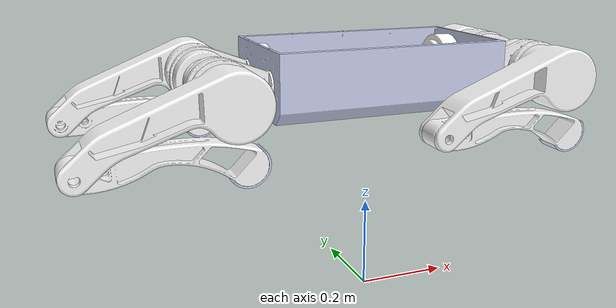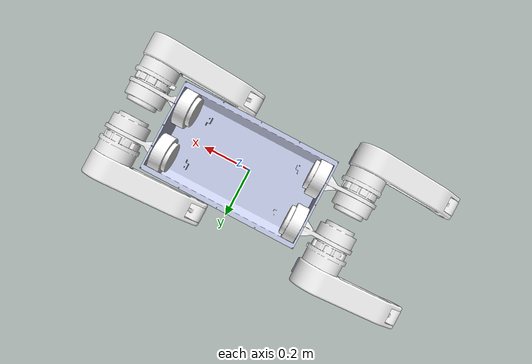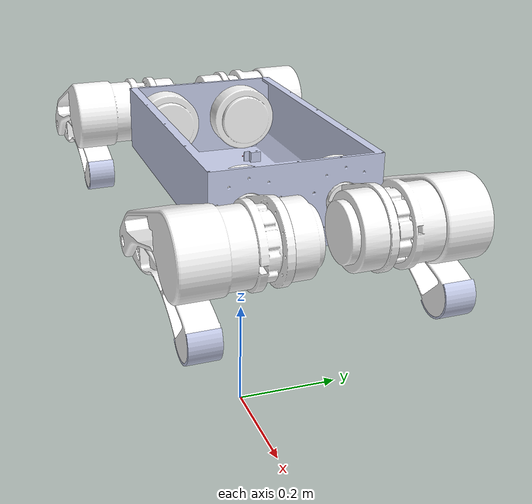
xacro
<?xml version="1.0"?>

<robot name="bengine_robot" xmlns:xacro="http://www.ros.org/wiki/xacro">

    <xacro:arg name="DEBUG" default="false"/>

    <xacro:include filename="$(find bengine_description1)/xacro/const.xacro"/>
    <xacro:include filename="$(find bengine_description1)/xacro/materials.xacro"/>
    <xacro:include filename="$(find bengine_description1)/xacro/leg.xacro"/>
        <xacro:include filename="$(find bengine_description1)/xacro/transmission.xacro"/>
    <xacro:include filename="$(find bengine_description1)/xacro/gazebo.xacro"/>

<!-- 调试时使用/方便观察机器人与世界的关系 -->
    <xacro:if value="$(arg DEBUG)">
        <link name="world"/>
        <joint name="base_static_joint" type="fixed">
            <origin rpy="0 0 0" xyz="0 0 0"/>
            <parent link="world"/>
            <child link="base"/>
        </joint>
    </xacro:if>

    <link name="base">
        <visual>
            <origin rpy="0 0 0" xyz="0 0 0"/>
            <geometry>
                <box size="0.001 0.001 0.001"/>
            </geometry>
        </visual>
    </link>

    <joint name="floating_base" type="fixed">
        <origin rpy="0 0 0" xyz="0 0 0.5"/>
        <parent link="base"/>
        <child link="trunk"/>
    </joint>

    <link name="trunk">
        <inertial>
            <origin
                xyz="1.4246E-10 -8.3627E-09 -0.01377"
                rpy="0 0 0" />
            <mass
                value="5.5" />
            <inertia
                ixx="0.012928"
                ixy="-9.4253E-12"
                ixz="-8.5678E-12"
                iyy="0.037494"
                iyz="4.9943E-10"
                izz="0.045271" />
        </inertial>
        <visual>
            <origin
                xyz="0 0 0"
                rpy="0 0 0" />
            <geometry>
                <mesh
                filename="package://bengine_description1/meshes/base_link.STL" />
            </geometry>
            <material
                name="">
                <color
                rgba="0.79216 0.81961 0.93333 1" />
            </material>
        </visual>
        <collision>
            <origin
                xyz="0 0 0"
                rpy="0 0 0" />
            <geometry>
                <mesh
                filename="package://bengine_description1/meshes/base_link.STL" />
            </geometry>
        </collision>
    </link>

    <joint name="imu_joint" type="fixed">
        <parent link="trunk"/>
        <child link="imu_link"/>
        <origin rpy="0 0 0" xyz="0.0 0.0 0.0"/>
    </joint>

    <link name="imu_link">
        <inertial>
            <mass value="0.001"/>
            <origin rpy="0 0 0" xyz="0 0 0"/>
            <inertia ixx="0.0001" ixy="0" ixz="0" iyy="0.0001" iyz="0" izz="0.0001"/>
        </inertial>
        <visual>
            <origin rpy="0 0 0" xyz="0 0 0"/>
            <geometry>
                <box size="0.001 0.001 0.001"/>
            </geometry>
            <material name="red"/>
        </visual>
        <collision>
            <origin rpy="0 0 0" xyz="0 0 0"/>
            <geometry>
                <box size=".001 .001 .001"/>
            </geometry>
        </collision>
    </link>

</robot>

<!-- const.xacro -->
<robot xmlns:xacro="http://www.ros.org/wiki/xacro">

    <!-- Constants for robot dimensions -->

    <!-- simplified collision value -->

    <!-- kinematic value -->

    <!-- leg offset from trunk center value -->

    <!-- offset of link and rotor locations (left front) -->

    <!-- joint limits -->
    <xacro:property name="damping" value="0.0"/>
    <xacro:property name="friction" value="0.0"/>

    <!-- dynamics inertial value        total 12.84kg -->
    <!-- trunk -->

    <!-- hip (left front) -->

    <!-- thigh -->

    <!-- calf -->

    <!-- foot -->

</robot>

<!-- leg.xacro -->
<robot xmlns:xacro="http://www.ros.org/wiki/xacro">

<!-- .........................LF_leg....................................... -->
    <link name="LF_hip_Link">
        <inertial>
        <origin
            xyz="0.040364 1.2659E-05 -0.0011006"
            rpy="0 0 0" />
        <mass
            value="1" />
        <inertia
            ixx="0.0013068"
            ixy="-3.4307E-07"
            ixz="2.9915E-05"
            iyy="0.0019766"
            iyz="4.5267E-06"
            izz="0.001591" />
        </inertial>
        <visual>
        <origin
            xyz="0 0 0"
            rpy="0 0 0" />
        <geometry>
            <mesh
            filename="package://bengine_description1/meshes/LF_roll_Link.STL" />
        </geometry>
        <material
            name="">
            <color
            rgba="1 1 1 1" />
        </material>
        </visual>
        <collision>
        <origin
            xyz="0 0 0"
            rpy="0 0 0" />
        <geometry>
            <mesh
            filename="package://bengine_description1/meshes/LF_roll_Link.STL" />
        </geometry>
        </collision>
    </link>

    <joint name="LF_hip_joint" type="revolute">
        <origin
        xyz="0.22 0.077 0.0015"
        rpy="0 0 0" />
        <parent
        link="trunk" />
        <child
        link="LF_hip_Link" />
        <axis
        xyz="-1 0 0" />
        <dynamics damping="${damping}" friction="${friction}"/>
        <limit
        lower="-3.14"
        upper="3.14"
        effort="100"
        velocity="15" />
    </joint>

  <link name="LF_thigh_Link">
    <inertial>
      <origin
        xyz="-0.049682 0.11584 -0.0084673"
        rpy="0 0 0" />
      <mass
        value="6" />
      <inertia
        ixx="0.0067785"
        ixy="-0.00086216"
        ixz="-0.0056662"
        iyy="0.031525"
        iyz="-0.00014782"
        izz="0.028015" />
    </inertial>
    <visual>
      <origin
        xyz="0 0 0"
        rpy="0 0 0" />
      <geometry>
        <mesh
          filename="package://bengine_description1/meshes/LF_pitch_Link.STL" />
      </geometry>
      <material
        name="">
        <color
          rgba="1 1 1 1" />
      </material>
    </visual>
    <collision>
      <origin
        xyz="0 0 0"
        rpy="0 0 0" />
      <geometry>
        <mesh
          filename="package://bengine_description1/meshes/LF_pitch_Link.STL" />
      </geometry>
    </collision>
  </link>

  <joint name="LF_thigh_joint" type="revolute">
    <origin
      xyz="0.1321 -0.029947 -0.0047174"
      rpy="0.011738 0 0" />
    <parent
      link="LF_hip_Link" />
    <child
      link="LF_thigh_Link" />
    <axis
      xyz="0 -1 0" />
    <limit
      lower="-3.14"
      upper="3.14"
      effort="100"
      velocity="15" />
  </joint>

  <link name="LF_calf_Link">
    <inertial>
      <origin
        xyz="0.15397 4.6056E-05 -0.0051606"
        rpy="0 0 0" />
      <mass
        value="3" />
      <inertia
        ixx="0.00033809"
        ixy="1.8662E-06"
        ixz="0.00045925"
        iyy="0.0073266"
        iyz="-8.2684E-08"
        izz="0.0071806" />
    </inertial>
    <visual>
      <origin
        xyz="0 0 0"
        rpy="0 0 0" />
      <geometry>
        <mesh
          filename="package://bengine_description1/meshes/LF_knee_Link.STL" />
      </geometry>
      <material
        name="">
        <color
          rgba="1 1 1 1" />
      </material>
    </visual>
    <collision>
      <origin
        xyz="0 0 0"
        rpy="0 0 0" />
      <geometry>
        <mesh
          filename="package://bengine_description1/meshes/LF_knee_Link.STL" />
      </geometry>
    </collision>
  </link>

  <joint name="LF_calf_joint" type="revolute">
    <origin
      xyz="-0.28465 0.15 -0.094729"
      rpy="0 0 0" />
    <parent
      link="LF_thigh_Link" />
    <child
      link="LF_calf_Link" />
    <axis
      xyz="0 -1 0" />
    <limit
      lower="-3.14"
      upper="3.14"
      effort="100"
      velocity="15" />
  </joint>

  <link name="LF_sensor_Link">
    <inertial>
      <origin
        xyz="0.017161 -0.02479 -0.01807"
        rpy="0 0 0" />
      <mass
        value="0.018948" />
      <inertia
        ixx="1.2239E-05"
        ixy="6.7853E-08"
        ixz="-5.7805E-06"
        iyy="1.6991E-05"
        iyz="5.0987E-08"
        izz="1.2648E-05" />
    </inertial>
    <visual>
      <origin
        xyz="0 0 0"
        rpy="0 0 0" />
      <geometry>
        <mesh
          filename="package://bengine_description1/meshes/LF_sensor_Link.STL" />
      </geometry>
      <material
        name="">
        <color
          rgba="0.79216 0.81961 0.93333 1" />
      </material>
    </visual>
    <collision>
      <origin
        xyz="0 0 0"
        rpy="0 0 0" />
      <geometry>
        <mesh
          filename="package://bengine_description1/meshes/LF_sensor_Link.STL" />
      </geometry>
    </collision>
  </link>

  <joint name="LF_sensor_joint" type="fixed">
    <origin
      xyz="0.29975 0.025 -0.018896"
      rpy="-0.011738 0 0" />
    <parent
      link="LF_calf_Link" />
    <child
      link="LF_sensor_Link" />
    <axis
      xyz="0 0 0" />
    <limit
      lower="0"
      upper="0"
      effort="0"
      velocity="0" />
  </joint>

<!-- .........................RF_leg....................................... -->

  <link name="RF_hip_Link">
    <inertial>
      <origin
        xyz="0.040364 1.6542E-05 -0.0011006"
        rpy="0 0 0" />
      <mass
        value="1" />
      <inertia
        ixx="0.0013068"
        ixy="-4.4861E-07"
        ixz="2.9913E-05"
        iyy="0.0019766"
        iyz="5.8871E-06"
        izz="0.0015911" />
    </inertial>
    <visual>
      <origin
        xyz="0 0 0"
        rpy="0 0 0" />
      <geometry>
        <mesh
          filename="package://bengine_description1/meshes/RF_roll_Link.STL" />
      </geometry>
      <material
        name="">
        <color
          rgba="1 1 1 1" />
      </material>
    </visual>
    <collision>
      <origin
        xyz="0 0 0"
        rpy="0 0 0" />
      <geometry>
        <mesh
          filename="package://bengine_description1/meshes/RF_roll_Link.STL" />
      </geometry>
    </collision>
  </link>

  <joint name="RF_hip_joint" type="revolute">
    <origin
      xyz="0.22 -0.077 0.0015"
      rpy="0 0 0" />
    <parent
      link="trunk" />
    <child
      link="RF_hip_Link" />
    <axis
      xyz="-1 0 0" />
    <limit
      lower="-3.14"
      upper="3.14"
      effort="100"
      velocity="15" />
  </joint>

  <link name="RF_thigh_Link">
    <inertial>
      <origin
        xyz="-0.049991 -0.11589 -0.0089042"
        rpy="0 0 0" />
      <mass
        value="6" />
      <inertia
        ixx="0.0068866"
        ixy="0.00086703"
        ixz="-0.0058854"
        iyy="0.031789"
        iyz="0.00015207"
        izz="0.028186" />
    </inertial>
    <visual>
      <origin
        xyz="0 0 0"
        rpy="0 0 0" />
      <geometry>
        <mesh
          filename="package://bengine_description1/meshes/RF_pitch_Link.STL" />
      </geometry>
      <material
        name="">
        <color
          rgba="1 1 1 1" />
      </material>
    </visual>
    <collision>
      <origin
        xyz="0 0 0"
        rpy="0 0 0" />
      <geometry>
        <mesh
          filename="package://bengine_description1/meshes/RF_pitch_Link.STL" />
      </geometry>
    </collision>
  </link>

  <joint name="RF_thigh_joint" type="revolute">
    <origin
      xyz="0.1321 0.030063 -0.0039071"
      rpy="0.015266 0 0" />
    <parent
      link="RF_hip_Link" />
    <child
      link="RF_thigh_Link" />
    <axis
      xyz="0 1 0" />
    <limit
      lower="-3.14"
      upper="3.14"
      effort="100"
      velocity="15" />
  </joint>

  <link name="RF_calf_Link">
    <inertial>
      <origin
        xyz="0.15415 -4.02E-05 -0.0050232"
        rpy="0 0 0" />
      <mass
        value="3" />
      <inertia
        ixx="0.00033753"
        ixy="-1.9982E-06"
        ixz="0.00045382"
        iyy="0.0073391"
        iyz="1.1633E-07"
        izz="0.0071938" />
    </inertial>
    <visual>
      <origin
        xyz="0 0 0"
        rpy="0 0 0" />
      <geometry>
        <mesh
          filename="package://bengine_description1/meshes/RF_knee_Link.STL" />
      </geometry>
      <material
        name="">
        <color
          rgba="1 1 1 1" />
      </material>
    </visual>
    <collision>
      <origin
        xyz="0 0 0"
        rpy="0 0 0" />
      <geometry>
        <mesh
          filename="package://bengine_description1/meshes/RF_knee_Link.STL" />
      </geometry>
    </collision>
  </link>

  <joint name="RF_calf_joint" type="revolute">
    <origin
      xyz="-0.28413 -0.15 -0.096285"
      rpy="0 0 0" />
    <parent
      link="RF_thigh_Link" />
    <child
      link="RF_calf_Link" />
    <axis
      xyz="0 1 0" />
    <limit
      lower="-3.14"
      upper="3.14"
      effort="100"
      velocity="15" />
  </joint>

  <link name="RF_sensor_Link">
    <inertial>
      <origin
        xyz="0.015066 -0.02468 -0.021168"
        rpy="0 0 0" />
      <mass
        value="0.024069" />
      <inertia
        ixx="1.3408E-05"
        ixy="1.0812E-07"
        ixz="-7.0819E-06"
        iyy="2.1459E-05"
        iyz="5.1584E-08"
        izz="1.8081E-05" />
    </inertial>
    <visual>
      <origin
        xyz="0 0 0"
        rpy="0 0 0" />
      <geometry>
        <mesh
          filename="package://bengine_description1/meshes/RF_sensor_Link.STL" />
      </geometry>
      <material
        name="">
        <color
          rgba="0.79216 0.81961 0.93333 1" />
      </material>
    </visual>
    <collision>
      <origin
        xyz="0 0 0"
        rpy="0 0 0" />
      <geometry>
        <mesh
          filename="package://bengine_description1/meshes/RF_sensor_Link.STL" />
      </geometry>
    </collision>
  </link>

  <joint name="RF_sensor_joint" type="fixed">
    <origin
      xyz="0.29982 0.025 -0.018563"
      rpy="-0.015266 0 0" />
    <parent
      link="RF_calf_Link" />
    <child
      link="RF_sensor_Link" />
    <axis
      xyz="0 0 0" />
    <limit
      lower="0"
      upper="0"
      effort="0"
      velocity="0" />
  </joint>

<!-- .........................LB_leg....................................... -->
  <link name="LB_hip_Link">
    <inertial>
      <origin
        xyz="-0.040364 1.4698E-05 -0.0011006"
        rpy="0 0 0" />
      <mass
        value="1" />
      <inertia
        ixx="0.0013068"
        ixy="4.0051E-07"
        ixz="-2.9914E-05"
        iyy="0.0019766"
        iyz="5.0596E-06"
        izz="0.001591" />
    </inertial>
    <visual>
      <origin
        xyz="0 0 0"
        rpy="0 0 0" />
      <geometry>
        <mesh
          filename="package://bengine_description1/meshes/LB_roll_Link.STL" />
      </geometry>
      <material
        name="">
        <color
          rgba="1 1 1 1" />
      </material>
    </visual>
    <collision>
      <origin
        xyz="0 0 0"
        rpy="0 0 0" />
      <geometry>
        <mesh
          filename="package://bengine_description1/meshes/LB_roll_Link.STL" />
      </geometry>
    </collision>
  </link>

  <joint name="LB_hip_joint" type="continuous">
    <origin
      xyz="-0.22 0.077 0.0015"
      rpy="0 0 0" />
    <parent
      link="trunk" />
    <child
      link="LB_hip_Link" />
    <axis
      xyz="1 0 0" />
    <limit
      lower="-3.14"
      upper="3.14"
      effort="100"
      velocity="15" />
  </joint>

  <link name="LB_thigh_Link">
    <inertial>
      <origin
        xyz="-0.04954 0.11584 -0.009262"
        rpy="0 0 0" />
      <mass
        value="6" />
      <inertia
        ixx="0.0069647"
        ixy="-0.00085987"
        ixz="-0.0060027"
        iyy="0.031525"
        iyz="-0.00016075"
        izz="0.027829" />
    </inertial>
    <visual>
      <origin
        xyz="0 0 0"
        rpy="0 0 0" />
      <geometry>
        <mesh
          filename="package://bengine_description1/meshes/LB_pitch_Link.STL" />
      </geometry>
      <material
        name="">
        <color
          rgba="1 1 1 1" />
      </material>
    </visual>
    <collision>
      <origin
        xyz="0 0 0"
        rpy="0 0 0" />
      <geometry>
        <mesh
          filename="package://bengine_description1/meshes/LB_pitch_Link.STL" />
      </geometry>
    </collision>
  </link>

  <joint name="LB_thigh_joint" type="revolute">
    <origin
      xyz="-0.1321 -0.02994 -0.0047587"
      rpy="0.013118 0 0" />
    <parent
      link="LB_hip_Link" />
    <child
      link="LB_thigh_Link" />
    <axis
      xyz="0 -1 0" />
    <limit
      lower="-3.14"
      upper="3.14"
      effort="100"
      velocity="15" />
  </joint>

  <link name="LB_calf_Link">
    <inertial>
      <origin
        xyz="0.15399 4.6051E-05 -0.0043814"
        rpy="0 0 0" />
      <mass
        value="3" />
      <inertia
        ixx="0.00033362"
        ixy="1.8666E-06"
        ixz="0.0004246"
        iyy="0.0073266"
        iyz="-7.3166E-08"
        izz="0.007185" />
    </inertial>
    <visual>
      <origin
        xyz="0 0 0"
        rpy="0 0 0" />
      <geometry>
        <mesh
          filename="package://bengine_description1/meshes/LB_knee_Link.STL" />
      </geometry>
      <material
        name="">
        <color
          rgba="1 1 1 1" />
      </material>
    </visual>
    <collision>
      <origin
        xyz="0 0 0"
        rpy="0 0 0" />
      <geometry>
        <mesh
          filename="package://bengine_description1/meshes/LB_knee_Link.STL" />
      </geometry>
    </collision>
  </link>

  <joint name="LB_calf_joint" type="revolute">
    <origin
      xyz="-0.28312 0.15 -0.099224"
      rpy="0 0 0" />
    <parent
      link="LB_thigh_Link" />
    <child
      link="LB_calf_Link" />
    <axis
      xyz="0 -1 0" />
    <limit
      lower="-3.14"
      upper="3.14"
      effort="100"
      velocity="15" />
  </joint>

  <link name="LB_sensor_Link">
    <inertial>
      <origin
        xyz="0.016468 -0.024751 -0.019126"
        rpy="0 0 0" />
      <mass
        value="0.024664" />
      <inertia
        ixx="1.5459E-05"
        ixy="1.0016E-07"
        ixz="-7.6348E-06"
        iyy="2.2668E-05"
        iyz="6.797E-08"
        izz="1.7488E-05" />
    </inertial>
    <visual>
      <origin
        xyz="0 0 0"
        rpy="0 0 0" />
      <geometry>
        <mesh
          filename="package://bengine_description1/meshes/LB_sensor_Link.STL" />
      </geometry>
      <material
        name="">
        <color
          rgba="0.79216 0.81961 0.93333 1" />
      </material>
    </visual>
    <collision>
      <origin
        xyz="0 0 0"
        rpy="0 0 0" />
      <geometry>
        <mesh
          filename="package://bengine_description1/meshes/LB_sensor_Link.STL" />
      </geometry>
    </collision>
  </link>

  <joint name="LB_sensor_joint" type="fixed">
    <origin
      xyz="0.29984 0.025 -0.017379"
      rpy="-0.013118 0 0" />
    <parent
      link="LB_calf_Link" />
    <child
      link="LB_sensor_Link" />
    <axis
      xyz="0 0 0" />
    <limit
      lower="0"
      upper="0"
      effort="0"
      velocity="0" />
  </joint>

<!-- .........................RB_leg....................................... -->
  <link name="RB_hip_Link">
    <inertial>
      <origin
        xyz="-0.040364 1.1792E-05 -0.0011006"
        rpy="0 0 0" />
      <mass
        value="1" />
      <inertia
        ixx="0.0013068"
        ixy="3.2151E-07"
        ixz="-2.9915E-05"
        iyy="0.0019767"
        iyz="4.0414E-06"
        izz="0.001591" />
    </inertial>
    <visual>
      <origin
        xyz="0 0 0"
        rpy="0 0 0" />
      <geometry>
        <mesh
          filename="package://bengine_description1/meshes/RB_roll_Link.STL" />
      </geometry>
      <material
        name="">
        <color
          rgba="1 1 1 1" />
      </material>
    </visual>
    <collision>
      <origin
        xyz="0 0 0"
        rpy="0 0 0" />
      <geometry>
        <mesh
          filename="package://bengine_description1/meshes/RB_roll_Link.STL" />
      </geometry>
    </collision>
  </link>

  <joint name="RB_hip_joint" type="revolute">
    <origin
      xyz="-0.22 -0.077 0.0015"
      rpy="0 0 0" />
    <parent
      link="trunk" />
    <child
      link="RB_hip_Link" />
    <axis
      xyz="1 0 0" />
    <limit
      lower="-3.14"
      upper="3.14"
      effort="100"
      velocity="15" />
  </joint>

  <link name="RB_thigh_Link">
    <inertial>
      <origin
        xyz="-0.049958 -0.11589 -0.0090966"
        rpy="0 0 0" />
      <mass
        value="6" />
      <inertia
        ixx="0.0069305"
        ixy="0.0008664"
        ixz="-0.0059669"
        iyy="0.031789"
        iyz="0.00015494"
        izz="0.028142" />
    </inertial>
    <visual>
      <origin
        xyz="0 0 0"
        rpy="0 0 0" />
      <geometry>
        <mesh
          filename="package://bengine_description1/meshes/RB_pitch_Link.STL" />
      </geometry>
      <material
        name="">
        <color
          rgba="1 1 1 1" />
      </material>
    </visual>
    <collision>
      <origin
        xyz="0 0 0"
        rpy="0 0 0" />
      <geometry>
        <mesh
          filename="package://bengine_description1/meshes/RB_pitch_Link.STL" />
      </geometry>
    </collision>
  </link>

  <joint name="RB_thigh_joint" type="revolute">
    <origin
      xyz="-0.1321 0.030044 -0.004051"
      rpy="0.010477 0 0" />
    <parent
      link="RB_hip_Link" />
    <child
      link="RB_thigh_Link" />
    <axis
      xyz="0 1 0" />
    <limit
      lower="-3.14"
      upper="3.14"
      effort="100"
      velocity="15" />
  </joint>

  <link name="RB_calf_Link">
    <inertial>
      <origin
        xyz="0.15423 -4.0188E-05 -0.00176"
        rpy="0 0 0" />
      <mass
        value="3" />
      <inertia
        ixx="0.0003214"
        ixy="-1.9999E-06"
        ixz="0.00030836"
        iyy="0.0073391"
        iyz="7.392E-08"
        izz="0.0072099" />
    </inertial>
    <visual>
      <origin
        xyz="0 0 0"
        rpy="0 0 0" />
      <geometry>
        <mesh
          filename="package://bengine_description1/meshes/RB_knee_Link.STL" />
      </geometry>
      <material
        name="">
        <color
          rgba="1 1 1 1" />
      </material>
    </visual>
    <collision>
      <origin
        xyz="0 0 0"
        rpy="0 0 0" />
      <geometry>
        <mesh
          filename="package://bengine_description1/meshes/RB_knee_Link.STL" />
      </geometry>
    </collision>
  </link>

  <joint name="RB_calf_joint" type="revolute">
    <origin
      xyz="-0.28377 -0.15 -0.097351"
      rpy="0 0 0" />
    <parent
      link="RB_thigh_Link" />
    <child
      link="RB_calf_Link" />
    <axis
      xyz="0 1 0" />
    <limit
      lower="-3.14"
      upper="3.14"
      effort="100"
      velocity="15" />
  </joint>

  <link name="RB_sensor_Link">
    <inertial>
      <origin
        xyz="0.016572 -0.024797 -0.019507"
        rpy="0 0 0" />
      <mass
        value="0.023885" />
      <inertia
        ixx="1.4642E-05"
        ixy="7.6959E-08"
        ixz="-7.3451E-06"
        iyy="2.1547E-05"
        iyz="4.913E-08"
        izz="1.6859E-05" />
    </inertial>
    <visual>
      <origin
        xyz="0 0 0"
        rpy="0 0 0" />
      <geometry>
        <mesh
          filename="package://bengine_description1/meshes/RB_sensor_Link.STL" />
      </geometry>
      <material
        name="">
        <color
          rgba="0.79216 0.81961 0.93333 1" />
      </material>
    </visual>
    <collision>
      <origin
        xyz="0 0 0"
        rpy="0 0 0" />
      <geometry>
        <mesh
          filename="package://bengine_description1/meshes/RB_sensor_Link.STL" />
      </geometry>
    </collision>
  </link>

  <joint name="RB_sensor_joint" type="fixed">
    <origin
      xyz="0.30014 0.025 -0.012214"
      rpy="-0.010477 0 0" />
    <parent
      link="RB_calf_Link" />
    <child
      link="RB_sensor_Link" />
    <axis
      xyz="0 0 0" />
    <limit
      lower="0"
      upper="0"
      effort="0"
      velocity="0" />
  </joint>

</robot>
